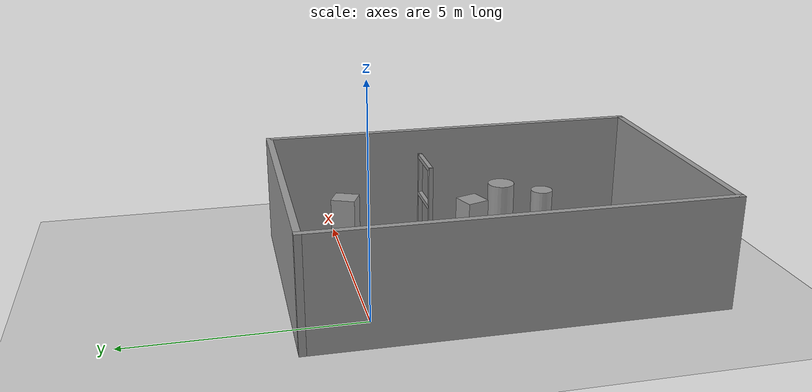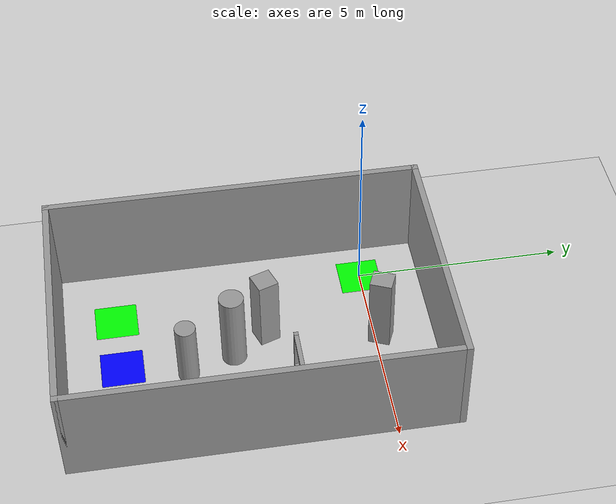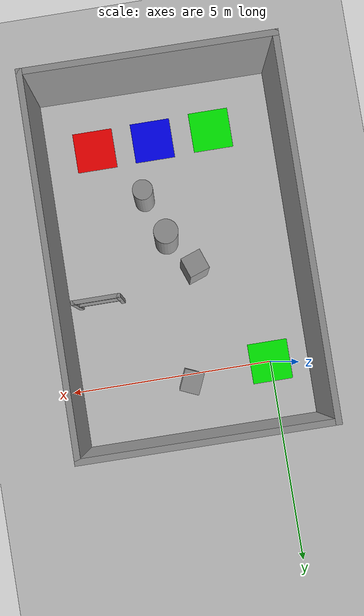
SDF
<sdf version="1.7">
 <world name="default">
  <light name="sun" type="directional">
   <pose>0 0 10 0 -0 0</pose>
   <diffuse>0.8 0.8 0.8 1</diffuse>
   <specular>0.2 0.2 0.2 1</specular>
   <attenuation>
    <range>1000</range>
    <constant>0.9</constant>
    <linear>0.01</linear>
    <quadratic>0.001</quadratic>
   </attenuation>
   <direction>-0.5 0.1 -0.9</direction>
   <spot><inner_angle>0</inner_angle><outer_angle>0</outer_angle><falloff>0</falloff></spot>
  </light>
  <model name="ground_plane">
   <static>1</static>
   <link name="link">
    <collision name="collision">
     <geometry><plane><normal>0 0 1</normal><size>100 100</size></plane></geometry>
     <surface>
      <contact><collide_bitmask>65535</collide_bitmask></contact>
      <friction><ode><mu>100</mu><mu2>50</mu2></ode></friction>
     </surface>
    </collision>
    <visual name="visual">
     <cast_shadows>0</cast_shadows>
     <geometry><plane><normal>0 0 1</normal><size>100 100</size></plane></geometry>
     <material>
      <script><uri>file://media/materials/scripts/gazebo.material</uri><name>Gazebo/Grey</name></script>
     </material>
    </visual>
   </link>
  </model>
  <gravity>0 0 -9.8</gravity>
  <magnetic_field>6e-06 2.3e-05 -4.2e-05</magnetic_field>
  <atmosphere type="adiabatic"/>
  <physics type="ode">
   <max_step_size>0.001</max_step_size>
   <real_time_factor>1</real_time_factor>
   <real_time_update_rate>1000</real_time_update_rate>
  </physics>
  <scene><ambient>0.4 0.4 0.4 1</ambient><background>0.7 0.7 0.7 1</background><shadows>1</shadows></scene>
  <spherical_coordinates>
   <surface_model>EARTH_WGS84</surface_model>
   <latitude_deg>0</latitude_deg>
   <longitude_deg>0</longitude_deg>
   <elevation>0</elevation>
   <heading_deg>0</heading_deg>
  </spherical_coordinates>
  <model name="comw">
   <pose>2.32363 -2.9381 0 0 0 -1.57679</pose>
   <link name="Wall_0">
    <collision name="Wall_0_Collision">
     <geometry><box><size>9 0.15 2.5</size></box></geometry>
     <pose>0 0 1.25 0 -0 0</pose>
    </collision>
    <visual name="Wall_0_Visual">
     <pose>0 0 1.25 0 -0 0</pose>
     <geometry><box><size>9 0.15 2.5</size></box></geometry>
     <material>
      <script><uri>file://media/materials/scripts/gazebo.material</uri><name>Gazebo/Grey</name></script>
      <ambient>1 1 1 1</ambient>
     </material>
     <meta><layer>0</layer></meta>
    </visual>
    <pose>0 2.4925 0 0 -0 0</pose>
   </link>
   <link name="Wall_1">
    <collision name="Wall_1_Collision">
     <geometry><box><size>6 0.15 2.5</size></box></geometry>
     <pose>0 0 1.25 0 -0 0</pose>
    </collision>
    <visual name="Wall_1_Visual">
     <pose>0 0 1.25 0 -0 0</pose>
     <geometry><box><size>6 0.15 2.5</size></box></geometry>
     <material>
      <script><uri>file://media/materials/scripts/gazebo.material</uri><name>Gazebo/Grey</name></script>
      <ambient>1 1 1 1</ambient>
     </material>
     <meta><layer>0</layer></meta>
    </visual>
    <pose>4.425 -0.4325 0 0 -0 -1.5708</pose>
   </link>
   <link name="Wall_2">
    <collision name="Wall_2_Collision">
     <geometry><box><size>9 0.15 2.5</size></box></geometry>
     <pose>0 0 1.25 0 -0 0</pose>
    </collision>
    <visual name="Wall_2_Visual">
     <pose>0 0 1.25 0 -0 0</pose>
     <geometry><box><size>9 0.15 2.5</size></box></geometry>
     <material>
      <script><uri>file://media/materials/scripts/gazebo.material</uri><name>Gazebo/Grey</name></script>
      <ambient>1 1 1 1</ambient>
     </material>
     <meta><layer>0</layer></meta>
    </visual>
    <pose>0 -3.3575 0 0 -0 3.14159</pose>
   </link>
   <link name="Wall_3">
    <collision name="Wall_3_Collision">
     <geometry><box><size>6 0.15 2.5</size></box></geometry>
     <pose>0 0 1.25 0 -0 0</pose>
    </collision>
    <visual name="Wall_3_Visual">
     <pose>0 0 1.25 0 -0 0</pose>
     <geometry><box><size>6 0.15 2.5</size></box></geometry>
     <material>
      <script><uri>file://media/materials/scripts/gazebo.material</uri><name>Gazebo/Grey</name></script>
      <ambient>1 1 1 1</ambient>
     </material>
     <meta><layer>0</layer></meta>
    </visual>
    <pose>-4.425 -0.4325 0 0 -0 1.5708</pose>
   </link>
   <static>1</static>
  </model>
  <model name="unit_box">
   <pose>2.05033 0.138023 0.975055 -1e-06 -1e-06 -0.412267</pose>
   <link name="link">
    <inertial>
     <mass>1</mass>
     <inertia>
      <ixx>0.166667</ixx>
      <ixy>0</ixy>
      <ixz>0</ixz>
      <iyy>0.166667</iyy>
      <iyz>0</iyz>
      <izz>0.166667</izz>
     </inertia>
    </inertial>
    <collision name="collision"><geometry><box><size>0.453987 0.514791 1.95011</size></box></geometry></collision>
    <visual name="visual">
     <geometry><box><size>0.453987 0.514791 1.95011</size></box></geometry>
     <material>
      <script><name>Gazebo/Grey</name><uri>file://media/materials/scripts/gazebo.material</uri></script>
     </material>
    </visual>
   </link>
  </model>
  <model name="gate">
   <static>1</static>
   <pose>3.9296 -2.08383 0 0 -0 0</pose>
   <link name="link">
    <visual name="leg_left_visual">
     <pose>-0.525 0 1 0 -0 0</pose>
     <geometry><box><size>0.1 0.1 2</size></box></geometry>
     <material>
      <script><name>Gazebo/Grey</name><uri>file://media/materials/scripts/gazebo.material</uri></script>
     </material>
    </visual>
    <collision name="leg_left_collision">
     <pose>-0.525 0 1 0 -0 0</pose>
     <geometry><box><size>0.1 0.1 2</size></box></geometry>
    </collision>
    <visual name="leg_right_visual">
     <pose>0.525 0 1 0 -0 0</pose>
     <geometry><box><size>0.1 0.1 2</size></box></geometry>
     <material>
      <script><name>Gazebo/Grey</name><uri>file://media/materials/scripts/gazebo.material</uri></script>
     </material>
    </visual>
    <collision name="leg_right_collision">
     <pose>0.525 0 1 0 -0 0</pose>
     <geometry><box><size>0.1 0.1 2</size></box></geometry>
    </collision>
    <visual name="top_beam_visual">
     <pose>0 0 1.95 0 -0 0</pose>
     <geometry><box><size>1.05 0.1 0.1</size></box></geometry>
     <material>
      <script><name>Gazebo/Grey</name><uri>file://media/materials/scripts/gazebo.material</uri></script>
     </material>
    </visual>
    <collision name="top_beam_collision">
     <pose>0 0 1.95 0 -0 0</pose>
     <geometry><box><size>1.05 0.1 0.1</size></box></geometry>
    </collision>
    <visual name="middle_beam_visual">
     <pose>0 0 1 0 -0 0</pose>
     <geometry><box><size>1.05 0.1 0.1</size></box></geometry>
     <material>
      <script><name>Gazebo/Grey</name><uri>file://media/materials/scripts/gazebo.material</uri></script>
     </material>
    </visual>
    <collision name="middle_beam_collision">
     <pose>0 0 1 0 -0 0</pose>
     <geometry><box><size>1.05 0.1 0.1</size></box></geometry>
    </collision>
    <inertial>
     <mass>20</mass>
     <inertia><ixx>2</ixx><ixy>0</ixy><ixz>0</ixz><iyy>2</iyy><iyz>0</iyz><izz>2</izz></inertia>
    </inertial>
   </link>
  </model>
  <model name="unit_box_0">
   <pose>1.54203 -2.54367 0.935824 -3e-06 1e-06 0.340045</pose>
   <link name="link">
    <inertial>
     <mass>1</mass>
     <inertia>
      <ixx>0.166667</ixx>
      <ixy>0</ixy>
      <ixz>0</ixz>
      <iyy>0.166667</iyy>
      <iyz>0</iyz>
      <izz>0.166667</izz>
     </inertia>
    </inertial>
    <collision name="collision"><geometry><box><size>0.496691 0.492723 1.87165</size></box></geometry></collision>
    <visual name="visual">
     <geometry><box><size>0.496691 0.492723 1.87165</size></box></geometry>
     <material>
      <script><name>Gazebo/Grey</name><uri>file://media/materials/scripts/gazebo.material</uri></script>
     </material>
    </visual>
   </link>
  </model>
  <model name="unit_cylinder">
   <pose>2.09108 -3.36798 0.98802 0 0 -2.4e-05</pose>
   <link name="link">
    <inertial>
     <mass>1</mass>
     <inertia><ixx>0.145833</ixx><ixy>0</ixy><ixz>0</ixz><iyy>0.145833</iyy><iyz>0</iyz><izz>0.125</izz></inertia>
    </inertial>
    <collision name="collision">
     <geometry><cylinder><radius>0.288714</radius><length>1.97604</length></cylinder></geometry>
    </collision>
    <visual name="visual">
     <geometry><cylinder><radius>0.288714</radius><length>1.97604</length></cylinder></geometry>
     <material>
      <script><name>Gazebo/Grey</name><uri>file://media/materials/scripts/gazebo.material</uri></script>
     </material>
    </visual>
   </link>
  </model>
  <model name="unit_cylinder_0">
   <pose>2.46983 -4.48076 0.796971 0 -0 4.8e-05</pose>
   <link name="link">
    <inertial>
     <mass>1</mass>
     <inertia><ixx>0.145833</ixx><ixy>0</ixy><ixz>0</ixz><iyy>0.145833</iyy><iyz>0</iyz><izz>0.125</izz></inertia>
    </inertial>
    <collision name="collision">
     <geometry><cylinder><radius>0.24361</radius><length>1.59396</length></cylinder></geometry>
    </collision>
    <visual name="visual">
     <geometry><cylinder><radius>0.24361</radius><length>1.59396</length></cylinder></geometry>
     <material>
      <script><name>Gazebo/Grey</name><uri>file://media/materials/scripts/gazebo.material</uri></script>
     </material>
    </visual>
   </link>
  </model>
  <model name="green_1x1">
   <static>1</static>
   <link name="link">
    <visual name="visual">
     <geometry><plane><normal>0 0 1</normal><size>1 1</size></plane></geometry>
     <material><ambient>0 1 0 1</ambient><diffuse>0 1 0 1</diffuse></material>
    </visual>
   </link>
   <pose>0.536757 -6.03284 0 0 -0 0</pose>
  </model>
  <model name="blue_1x1">
   <static>1</static>
   <link name="link">
    <visual name="visual">
     <geometry><plane><normal>0 0 1</normal><size>1 1</size></plane></geometry>
     <material><ambient>0 0 1 1</ambient><diffuse>0 0 1 1</diffuse></material>
    </visual>
   </link>
   <pose>2.0367 -5.99848 0 0 -0 0</pose>
  </model>
  <model name="red_1x1">
   <static>1</static>
   <link name="link">
    <visual name="visual">
     <geometry><plane><normal>0 0 1</normal><size>1 1</size></plane></geometry>
     <material><ambient>1 0 0 1</ambient><diffuse>1 0 0 1</diffuse></material>
    </visual>
   </link>
   <pose>3.51794 -5.97936 0 0 -0 0</pose>
  </model>
  <model name="green_1x1_0">
   <static>1</static>
   <link name="link">
    <visual name="visual">
     <geometry><plane><normal>0 0 1</normal><size>1 1</size></plane></geometry>
     <material><ambient>0 1 0 1</ambient><diffuse>0 1 0 1</diffuse></material>
    </visual>
   </link>
   <pose>0.010449 -0.004224 0 0 -0 0</pose>
  </model>
 </world>
</sdf>
